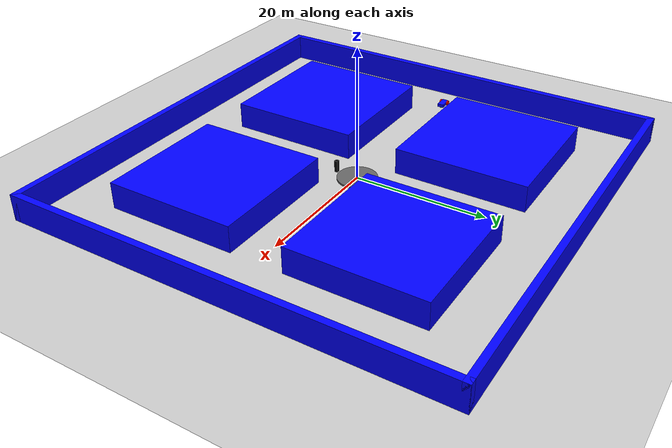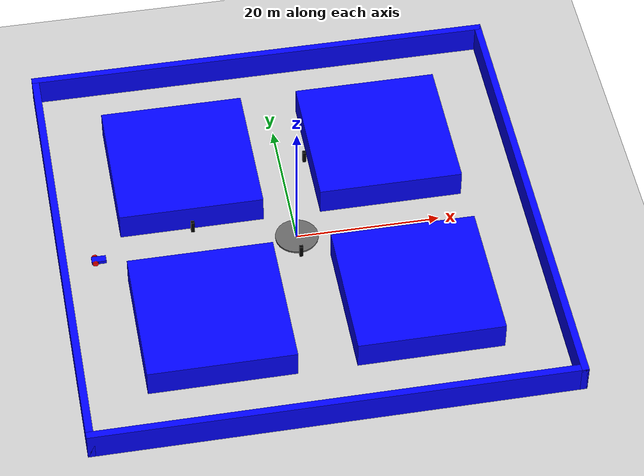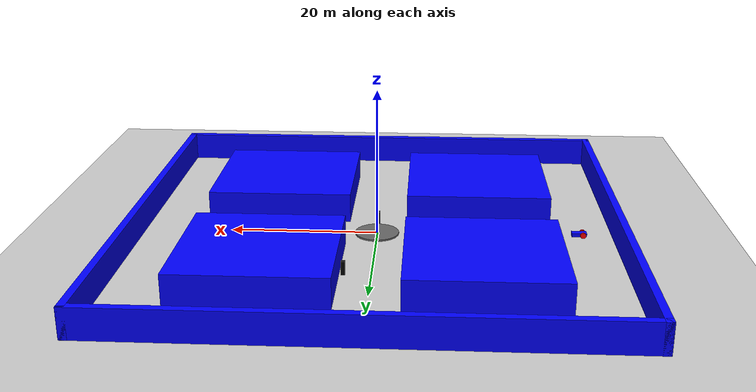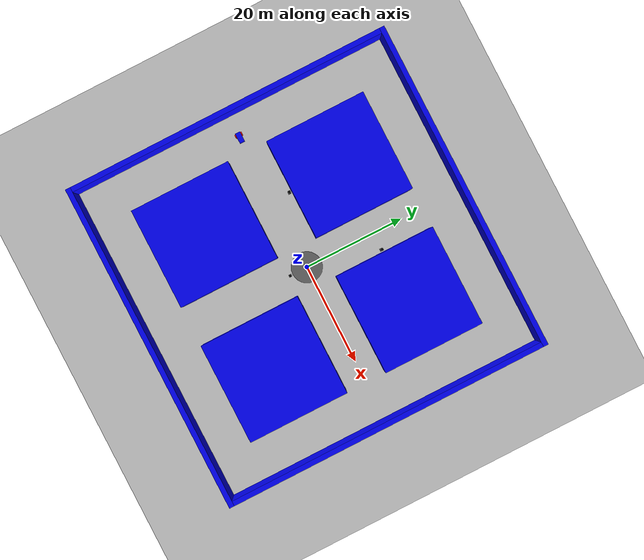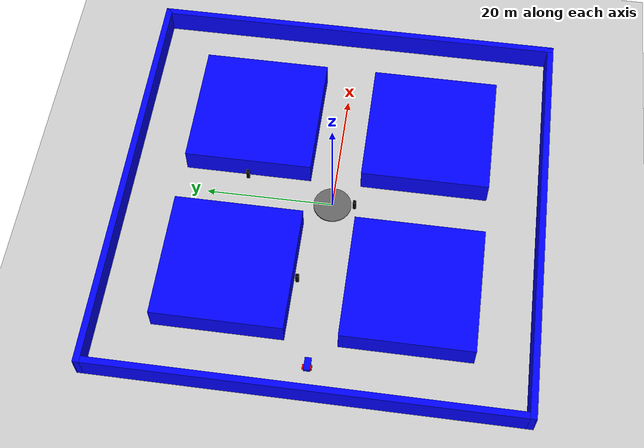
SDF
<sdf version="1.10">
 <world name="car_world">
  <physics name="1ms" type="ignored">
   <max_step_size>0.001</max_step_size>
   <real_time_factor>1.0</real_time_factor>
  </physics>
  <plugin filename="gz-sim-physics-system" name="gz::sim::systems::Physics"/>
  <plugin filename="gz-sim-user-commands-system" name="gz::sim::systems::UserCommands"/>
  <plugin filename="gz-sim-scene-broadcaster-system" name="gz::sim::systems::SceneBroadcaster"/>
  <plugin filename="gz-sim-imu-system" name="gz::sim::systems::Imu"/>
  <plugin filename="gz-sim-sensors-system" name="gz::sim::systems::Sensors">
   <render_engine>ogre2</render_engine>
  </plugin>
  <light type="directional" name="sun">
   <pose>0 0 10 0 0 0</pose>
   <diffuse>0.8 0.8 0.8 1</diffuse>
   <specular>0.2 0.2 0.2 1</specular>
   <attenuation>
    <range>1000</range>
    <constant>0.9</constant>
    <linear>0.01</linear>
    <quadratic>0.001</quadratic>
   </attenuation>
   <direction>-0.5 0.1 -0.9</direction>
  </light>
  <model name="ground_plane">
   <static>true</static>
   <link name="link">
    <collision name="collision"><geometry><plane><normal>0 0 1</normal></plane></geometry></collision>
    <visual name="visual">
     <geometry><plane><normal>0 0 1</normal><size>100 100</size></plane></geometry>
     <material>
      <ambient>0.8 0.8 0.8 1</ambient>
      <diffuse>0.8 0.8 0.8 1</diffuse>
      <specular>0.8 0.8 0.8 1</specular>
     </material>
    </visual>
   </link>
  </model>
  <model name="vehicle_blue" canonical_link="chassis">
   <pose>-28 0 0 0 0 0</pose>
   <link name="chassis">
    <pose relative_to="__model__">0.5 0 0.4 0 0 0</pose>
    <inertial>
     <mass>1.14395</mass>
     <inertia>
      <ixx>0.095329</ixx>
      <ixy>0</ixy>
      <ixz>0</ixz>
      <iyy>0.381317</iyy>
      <iyz>0</iyz>
      <izz>0.476646</izz>
     </inertia>
    </inertial>
    <visual name="visual">
     <geometry><box><size>2.0 1.0 0.5</size></box></geometry>
     <material>
      <ambient>0.0 0.0 1.0 1</ambient>
      <diffuse>0.0 0.0 1.0 1</diffuse>
      <specular>0.0 0.0 1.0 1</specular>
     </material>
    </visual>
    <collision name="collision"><geometry><box><size>2.0 1.0 0.5</size></box></geometry></collision>
    <sensor name="imu_sensor" type="imu">
     <always_on>1</always_on>
     <update_rate>1</update_rate>
     <topic>imu</topic>
    </sensor>
   </link>
   <link name="left_wheel">
    <pose relative_to="chassis">-0.5 0.6 0 -1.5707 0 0</pose>
    <inertial>
     <mass>1</mass>
     <inertia><ixx>0.043333</ixx><ixy>0</ixy><ixz>0</ixz><iyy>0.043333</iyy><iyz>0</iyz><izz>0.08</izz></inertia>
    </inertial>
    <visual name="visual">
     <geometry><cylinder><radius>0.4</radius><length>0.2</length></cylinder></geometry>
     <material>
      <ambient>1.0 0.0 0.0 1</ambient>
      <diffuse>1.0 0.0 0.0 1</diffuse>
      <specular>1.0 0.0 0.0 1</specular>
     </material>
    </visual>
    <collision name="collision">
     <geometry><cylinder><radius>0.4</radius><length>0.2</length></cylinder></geometry>
    </collision>
   </link>
   <link name="right_wheel">
    <pose relative_to="chassis">-0.5 -0.6 0 -1.5707 0 0</pose>
    <inertial>
     <mass>1</mass>
     <inertia><ixx>0.043333</ixx><ixy>0</ixy><ixz>0</ixz><iyy>0.043333</iyy><iyz>0</iyz><izz>0.08</izz></inertia>
    </inertial>
    <visual name="visual">
     <geometry><cylinder><radius>0.4</radius><length>0.2</length></cylinder></geometry>
     <material>
      <ambient>1.0 0.0 0.0 1</ambient>
      <diffuse>1.0 0.0 0.0 1</diffuse>
      <specular>1.0 0.0 0.0 1</specular>
     </material>
    </visual>
    <collision name="collision">
     <geometry><cylinder><radius>0.4</radius><length>0.2</length></cylinder></geometry>
    </collision>
   </link>
   <frame name="caster_frame" attached_to="chassis"><pose>0.8 0 -0.2 0 0 0</pose></frame>
   <link name="caster">
    <pose relative_to="caster_frame"/>
    <inertial>
     <mass>1</mass>
     <inertia><ixx>0.016</ixx><ixy>0</ixy><ixz>0</ixz><iyy>0.016</iyy><iyz>0</iyz><izz>0.016</izz></inertia>
    </inertial>
    <visual name="visual">
     <geometry><sphere><radius>0.2</radius></sphere></geometry>
     <material>
      <ambient>0.0 1 0.0 1</ambient>
      <diffuse>0.0 1 0.0 1</diffuse>
      <specular>0.0 1 0.0 1</specular>
     </material>
    </visual>
    <collision name="collision"><geometry><sphere><radius>0.2</radius></sphere></geometry></collision>
   </link>
   <joint name="left_wheel_joint" type="revolute">
    <pose relative_to="left_wheel"/>
    <parent>chassis</parent>
    <child>left_wheel</child>
    <axis>
     <xyz expressed_in="__model__">0 1 0</xyz>
     <limit><lower>-1.79769e+308</lower><upper>1.79769e+308</upper></limit>
    </axis>
   </joint>
   <joint name="right_wheel_joint" type="revolute">
    <pose relative_to="right_wheel"/>
    <parent>chassis</parent>
    <child>right_wheel</child>
    <axis>
     <xyz expressed_in="__model__">0 1 0</xyz>
     <limit><lower>-1.79769e+308</lower><upper>1.79769e+308</upper></limit>
    </axis>
   </joint>
   <joint name="caster_wheel" type="ball"><parent>chassis</parent><child>caster</child></joint>
   <plugin filename="gz-sim-diff-drive-system" name="gz::sim::systems::DiffDrive">
    <left_joint>left_wheel_joint</left_joint>
    <right_joint>right_wheel_joint</right_joint>
    <wheel_separation>1.2</wheel_separation>
    <wheel_radius>0.4</wheel_radius>
    <odom_publish_frequency>1</odom_publish_frequency>
    <topic>cmd_vel</topic>
   </plugin>
   <plugin filename="gz-sim-triggered-publisher-system" name="gz::sim::systems::TriggeredPublisher">
    <input type="gz.msgs.Int32" topic="/keyboard/keypress"><match field="data">16777234</match></input>
    <output type="gz.msgs.Twist" topic="/cmd_vel">linear: {x: 0.0}, angular: {z: 0.5}</output>
   </plugin>
   <plugin filename="gz-sim-triggered-publisher-system" name="gz::sim::systems::TriggeredPublisher">
    <input type="gz.msgs.Int32" topic="/keyboard/keypress"><match field="data">16777235</match></input>
    <output type="gz.msgs.Twist" topic="/cmd_vel">linear: {x: 0.5}, angular: {z: 0.0}</output>
   </plugin>
   <plugin filename="gz-sim-triggered-publisher-system" name="gz::sim::systems::TriggeredPublisher">
    <input type="gz.msgs.Int32" topic="/keyboard/keypress"><match field="data">16777236</match></input>
    <output type="gz.msgs.Twist" topic="/cmd_vel">linear: {x: 0.0}, angular: {z: -0.5}</output>
   </plugin>
   <plugin filename="gz-sim-triggered-publisher-system" name="gz::sim::systems::TriggeredPublisher">
    <input type="gz.msgs.Int32" topic="/keyboard/keypress"><match field="data">16777237</match></input>
    <output type="gz.msgs.Twist" topic="/cmd_vel">linear: {x: -0.5}, angular: {z: 0.0}</output>
   </plugin>
   <plugin filename="gz-sim-triggered-publisher-system" name="gz::sim::systems::TriggeredPublisher">
    <input type="gz.msgs.Boolean" topic="/wall/touched"><match>data: true</match></input>
    <output type="gz.msgs.Twist" topic="/cmd_vel">linear: {x: 0.0}, angular: {z: 0.0}</output>
   </plugin>
   <frame name="lidar_frame" attached_to="chassis"><pose>0.8 0 0.5 0 0 0</pose></frame>
   <link name="lidar_link">
    <pose relative_to="lidar_frame"/>
    <sensor name="gpu_lidar" type="gpu_lidar">
     <topic>lidar</topic>
     <update_rate>10</update_rate>
     <ray>
      <scan>
       <horizontal>
        <samples>640</samples>
        <resolution>1</resolution>
        <min_angle>-1.396263</min_angle>
        <max_angle>1.396263</max_angle>
       </horizontal>
       <vertical>
        <samples>1</samples>
        <resolution>0.01</resolution>
        <min_angle>0</min_angle>
        <max_angle>0</max_angle>
       </vertical>
      </scan>
      <range><min>0.08</min><max>10.0</max><resolution>0.01</resolution></range>
     </ray>
     <always_on>1</always_on>
     <visualize>true</visualize>
    </sensor>
   </link>
   <joint name="lidar_joint" type="fixed"><parent>chassis</parent><child>lidar_link</child></joint>
  </model>
  <model name="actor_walking_collision">
   <static>true</static>
   <pose>-14 3.5 0.9 0 0 0</pose>
   <link name="link">
    <visual name="visual">
     <geometry><box><size>0.5 0.5 1.8</size></box></geometry>
     <material><ambient>0 0 0 0</ambient><diffuse>0 0 0 0</diffuse><specular>0 0 0 0</specular></material>
    </visual>
    <collision name="collision"><geometry><box><size>0.5 0.5 1.8</size></box></geometry></collision>
   </link>
  </model>
  <model name="actor_north_collision">
   <static>true</static>
   <pose>3.5 14 0.9 0 0 0</pose>
   <link name="link">
    <visual name="visual">
     <geometry><box><size>0.5 0.5 1.8</size></box></geometry>
     <material><ambient>0 0 0 0</ambient><diffuse>0 0 0 0</diffuse><specular>0 0 0 0</specular></material>
    </visual>
    <collision name="collision"><geometry><box><size>0.5 0.5 1.8</size></box></geometry></collision>
   </link>
  </model>
  <model name="actor_east_collision">
   <static>true</static>
   <pose>0 -3.5 0.9 0 0 0</pose>
   <link name="link">
    <visual name="visual">
     <geometry><box><size>0.5 0.5 1.8</size></box></geometry>
     <material><ambient>0 0 0 0</ambient><diffuse>0 0 0 0</diffuse><specular>0 0 0 0</specular></material>
    </visual>
    <collision name="collision"><geometry><box><size>0.5 0.5 1.8</size></box></geometry></collision>
   </link>
  </model>
  <model name="border_north">
   <static>true</static>
   <pose>0 32.5 2 0 0 0</pose>
   <link name="link">
    <visual name="visual">
     <geometry><box><size>66 1 4</size></box></geometry>
     <material>
      <ambient>0.0 0.0 1.0 1</ambient>
      <diffuse>0.0 0.0 1.0 1</diffuse>
      <specular>0.0 0.0 1.0 1</specular>
     </material>
    </visual>
    <collision name="collision"><geometry><box><size>66 1 4</size></box></geometry></collision>
   </link>
  </model>
  <model name="border_south">
   <static>true</static>
   <pose>0 -32.5 2 0 0 0</pose>
   <link name="link">
    <visual name="visual">
     <geometry><box><size>66 1 4</size></box></geometry>
     <material>
      <ambient>0.0 0.0 1.0 1</ambient>
      <diffuse>0.0 0.0 1.0 1</diffuse>
      <specular>0.0 0.0 1.0 1</specular>
     </material>
    </visual>
    <collision name="collision"><geometry><box><size>66 1 4</size></box></geometry></collision>
   </link>
  </model>
  <model name="border_west">
   <static>true</static>
   <pose>-32.5 0 2 0 0 0</pose>
   <link name="link">
    <visual name="visual">
     <geometry><box><size>1 66 4</size></box></geometry>
     <material>
      <ambient>0.0 0.0 1.0 1</ambient>
      <diffuse>0.0 0.0 1.0 1</diffuse>
      <specular>0.0 0.0 1.0 1</specular>
     </material>
    </visual>
    <collision name="collision"><geometry><box><size>1 66 4</size></box></geometry></collision>
   </link>
  </model>
  <model name="border_east">
   <static>true</static>
   <pose>32.5 0 2 0 0 0</pose>
   <link name="link">
    <visual name="visual">
     <geometry><box><size>1 66 4</size></box></geometry>
     <material>
      <ambient>0.0 0.0 1.0 1</ambient>
      <diffuse>0.0 0.0 1.0 1</diffuse>
      <specular>0.0 0.0 1.0 1</specular>
     </material>
    </visual>
    <collision name="collision"><geometry><box><size>1 66 4</size></box></geometry></collision>
   </link>
  </model>
  <model name="block_nw">
   <static>true</static>
   <pose>-14 14 2 0 0 0</pose>
   <link name="link">
    <visual name="visual">
     <geometry><box><size>20 20 4</size></box></geometry>
     <material>
      <ambient>0.0 0.0 1.0 1</ambient>
      <diffuse>0.0 0.0 1.0 1</diffuse>
      <specular>0.0 0.0 1.0 1</specular>
     </material>
    </visual>
    <collision name="collision"><geometry><box><size>20 20 4</size></box></geometry></collision>
   </link>
  </model>
  <model name="block_ne">
   <static>true</static>
   <pose>14 14 2 0 0 0</pose>
   <link name="link">
    <visual name="visual">
     <geometry><box><size>20 20 4</size></box></geometry>
     <material>
      <ambient>0.0 0.0 1.0 1</ambient>
      <diffuse>0.0 0.0 1.0 1</diffuse>
      <specular>0.0 0.0 1.0 1</specular>
     </material>
    </visual>
    <collision name="collision"><geometry><box><size>20 20 4</size></box></geometry></collision>
   </link>
  </model>
  <model name="block_sw">
   <static>true</static>
   <pose>-14 -14 2 0 0 0</pose>
   <link name="link">
    <visual name="visual">
     <geometry><box><size>20 20 4</size></box></geometry>
     <material>
      <ambient>0.0 0.0 1.0 1</ambient>
      <diffuse>0.0 0.0 1.0 1</diffuse>
      <specular>0.0 0.0 1.0 1</specular>
     </material>
    </visual>
    <collision name="collision"><geometry><box><size>20 20 4</size></box></geometry></collision>
   </link>
  </model>
  <model name="block_se">
   <static>true</static>
   <pose>14 -14 2 0 0 0</pose>
   <link name="link">
    <visual name="visual">
     <geometry><box><size>20 20 4</size></box></geometry>
     <material>
      <ambient>0.0 0.0 1.0 1</ambient>
      <diffuse>0.0 0.0 1.0 1</diffuse>
      <specular>0.0 0.0 1.0 1</specular>
     </material>
    </visual>
    <collision name="collision"><geometry><box><size>20 20 4</size></box></geometry></collision>
   </link>
  </model>
  <model name="roundabout_island">
   <static>true</static>
   <link name="link">
    <visual name="visual">
     <geometry><cylinder><radius>3.0</radius><length>0.3</length></cylinder></geometry>
     <material>
      <ambient>0.4 0.4 0.4 1</ambient>
      <diffuse>0.4 0.4 0.4 1</diffuse>
      <specular>0.1 0.1 0.1 1</specular>
     </material>
    </visual>
    <collision name="collision">
     <geometry><cylinder><radius>3.0</radius><length>0.3</length></cylinder></geometry>
    </collision>
   </link>
  </model>
 </world>
</sdf>
